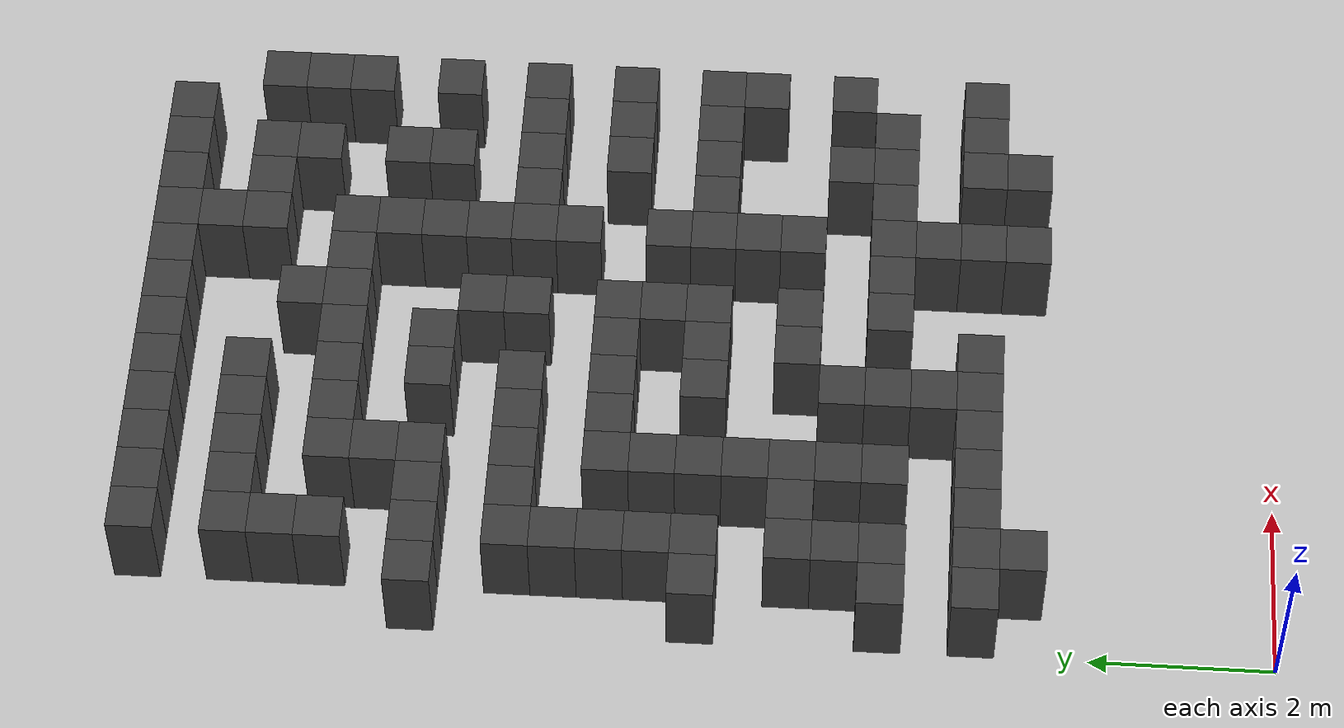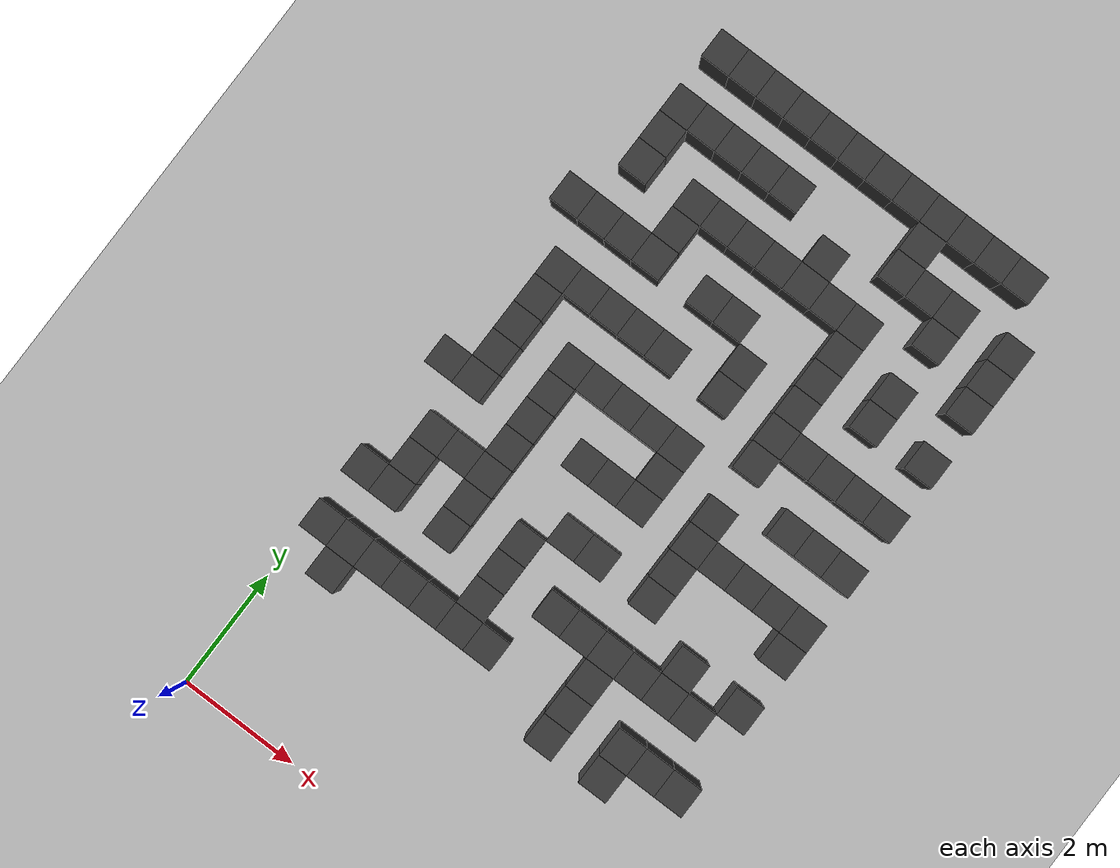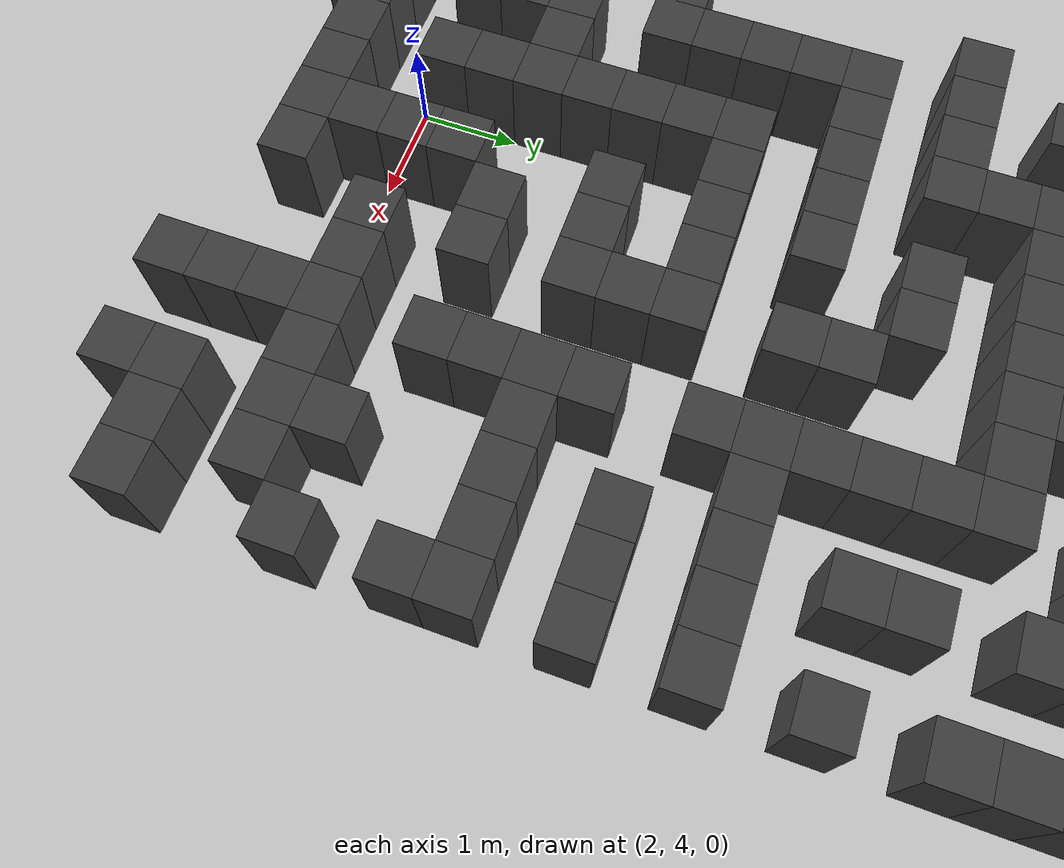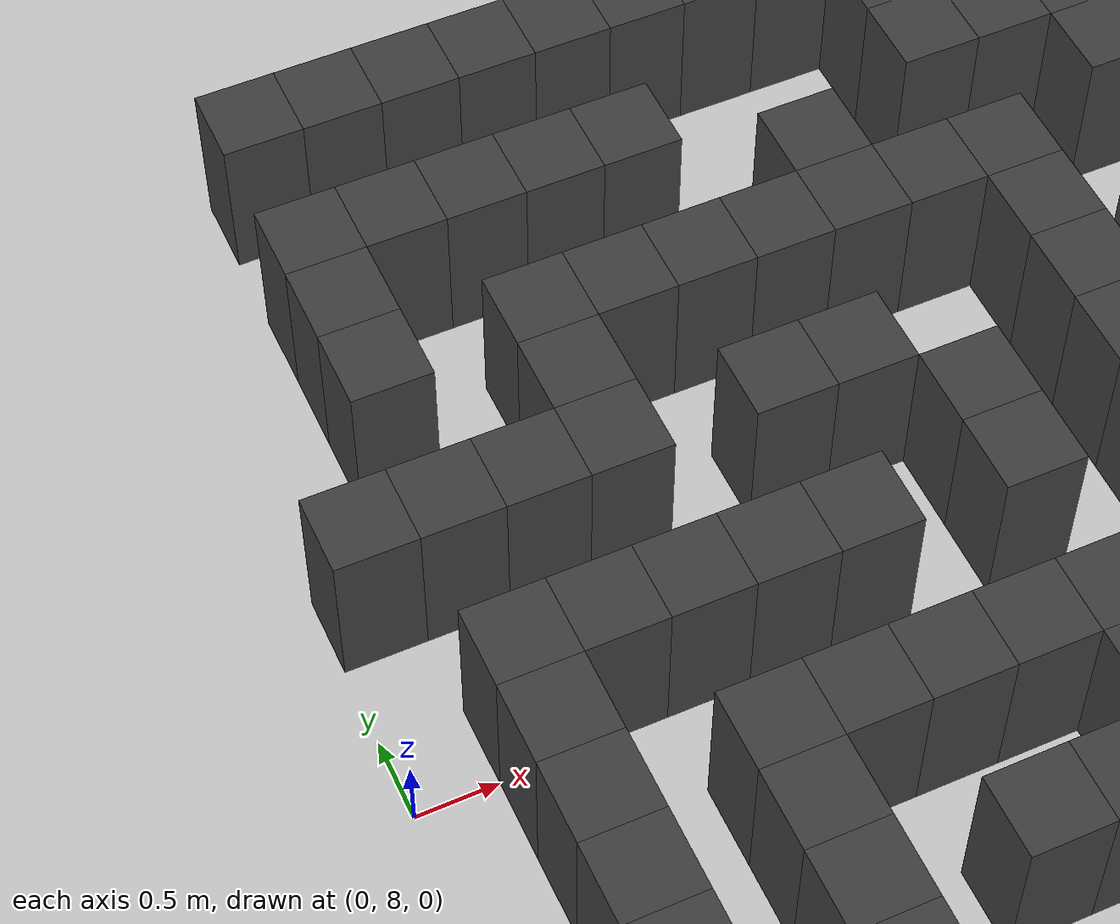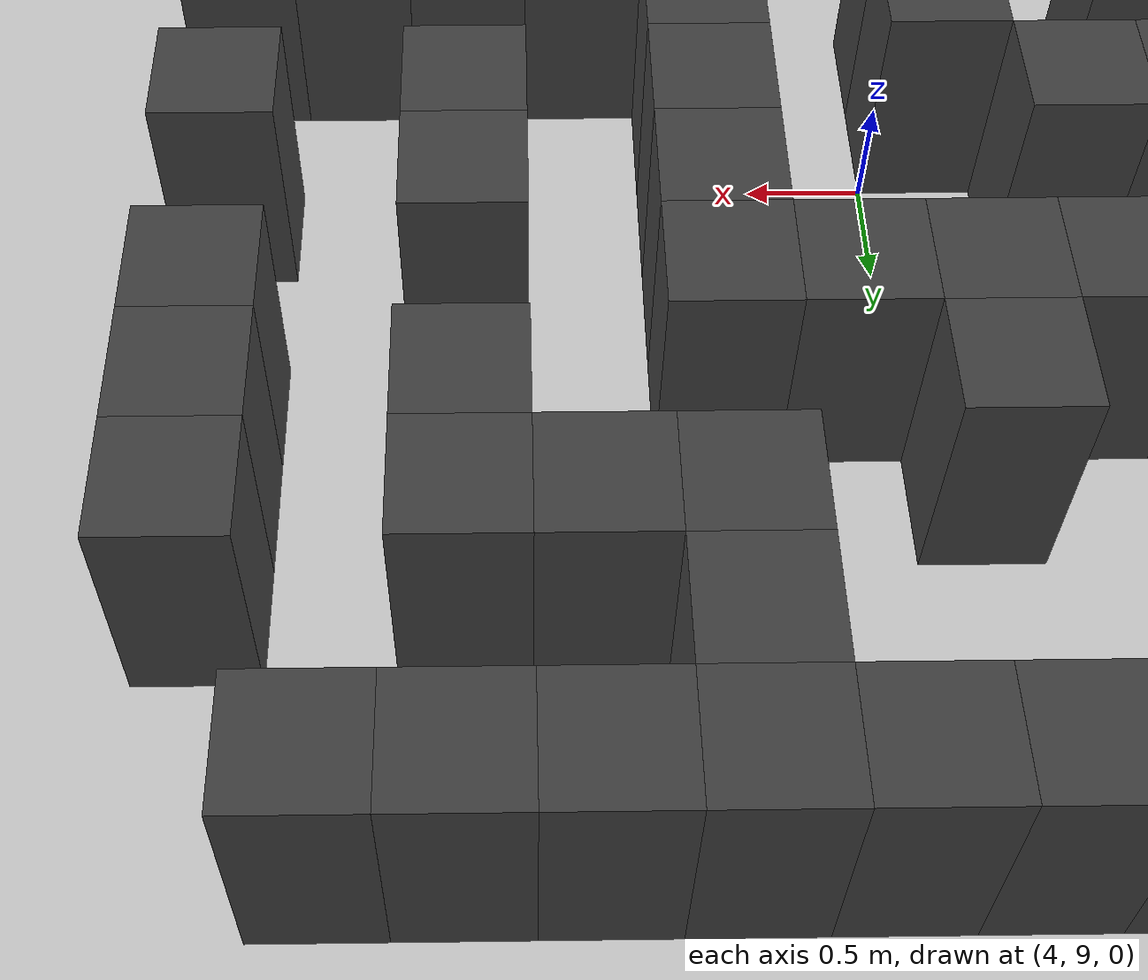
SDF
<sdf version="1.7">
 <world name="map_16734">
  <model name="ground_plane">
   <static>true</static>
   <link name="link">
    <collision name="collision">
     <geometry><plane><normal>0 0 1</normal><size>200 200</size></plane></geometry>
    </collision>
    <visual name="visual">
     <geometry><plane><normal>0 0 1</normal><size>200 200</size></plane></geometry>
     <material><ambient>0.8 0.8 0.8 1</ambient><diffuse>0.8 0.8 0.8 1</diffuse></material>
    </visual>
   </link>
  </model>
  <model name="maze_environment">
   <static>true</static>
   <link name="wall_26">
    <pose>0.750 12.250 0.500 0 0 0</pose>
    <collision name="col"><geometry><box><size>0.5 0.5 1.0</size></box></geometry></collision>
    <visual name="vis">
     <geometry><box><size>0.5 0.5 1.0</size></box></geometry>
     <material><ambient>0.15 0.15 0.15 1</ambient><diffuse>0.25 0.25 0.25 1</diffuse></material>
    </visual>
   </link>
   <link name="wall_27">
    <pose>1.250 12.250 0.500 0 0 0</pose>
    <collision name="col"><geometry><box><size>0.5 0.5 1.0</size></box></geometry></collision>
    <visual name="vis">
     <geometry><box><size>0.5 0.5 1.0</size></box></geometry>
     <material><ambient>0.15 0.15 0.15 1</ambient><diffuse>0.25 0.25 0.25 1</diffuse></material>
    </visual>
   </link>
   <link name="wall_28">
    <pose>1.750 12.250 0.500 0 0 0</pose>
    <collision name="col"><geometry><box><size>0.5 0.5 1.0</size></box></geometry></collision>
    <visual name="vis">
     <geometry><box><size>0.5 0.5 1.0</size></box></geometry>
     <material><ambient>0.15 0.15 0.15 1</ambient><diffuse>0.25 0.25 0.25 1</diffuse></material>
    </visual>
   </link>
   <link name="wall_29">
    <pose>2.250 12.250 0.500 0 0 0</pose>
    <collision name="col"><geometry><box><size>0.5 0.5 1.0</size></box></geometry></collision>
    <visual name="vis">
     <geometry><box><size>0.5 0.5 1.0</size></box></geometry>
     <material><ambient>0.15 0.15 0.15 1</ambient><diffuse>0.25 0.25 0.25 1</diffuse></material>
    </visual>
   </link>
   <link name="wall_30">
    <pose>2.750 12.250 0.500 0 0 0</pose>
    <collision name="col"><geometry><box><size>0.5 0.5 1.0</size></box></geometry></collision>
    <visual name="vis">
     <geometry><box><size>0.5 0.5 1.0</size></box></geometry>
     <material><ambient>0.15 0.15 0.15 1</ambient><diffuse>0.25 0.25 0.25 1</diffuse></material>
    </visual>
   </link>
   <link name="wall_31">
    <pose>3.250 12.250 0.500 0 0 0</pose>
    <collision name="col"><geometry><box><size>0.5 0.5 1.0</size></box></geometry></collision>
    <visual name="vis">
     <geometry><box><size>0.5 0.5 1.0</size></box></geometry>
     <material><ambient>0.15 0.15 0.15 1</ambient><diffuse>0.25 0.25 0.25 1</diffuse></material>
    </visual>
   </link>
   <link name="wall_32">
    <pose>3.750 12.250 0.500 0 0 0</pose>
    <collision name="col"><geometry><box><size>0.5 0.5 1.0</size></box></geometry></collision>
    <visual name="vis">
     <geometry><box><size>0.5 0.5 1.0</size></box></geometry>
     <material><ambient>0.15 0.15 0.15 1</ambient><diffuse>0.25 0.25 0.25 1</diffuse></material>
    </visual>
   </link>
   <link name="wall_33">
    <pose>4.250 12.250 0.500 0 0 0</pose>
    <collision name="col"><geometry><box><size>0.5 0.5 1.0</size></box></geometry></collision>
    <visual name="vis">
     <geometry><box><size>0.5 0.5 1.0</size></box></geometry>
     <material><ambient>0.15 0.15 0.15 1</ambient><diffuse>0.25 0.25 0.25 1</diffuse></material>
    </visual>
   </link>
   <link name="wall_34">
    <pose>4.750 12.250 0.500 0 0 0</pose>
    <collision name="col"><geometry><box><size>0.5 0.5 1.0</size></box></geometry></collision>
    <visual name="vis">
     <geometry><box><size>0.5 0.5 1.0</size></box></geometry>
     <material><ambient>0.15 0.15 0.15 1</ambient><diffuse>0.25 0.25 0.25 1</diffuse></material>
    </visual>
   </link>
   <link name="wall_35">
    <pose>5.250 12.250 0.500 0 0 0</pose>
    <collision name="col"><geometry><box><size>0.5 0.5 1.0</size></box></geometry></collision>
    <visual name="vis">
     <geometry><box><size>0.5 0.5 1.0</size></box></geometry>
     <material><ambient>0.15 0.15 0.15 1</ambient><diffuse>0.25 0.25 0.25 1</diffuse></material>
    </visual>
   </link>
   <link name="wall_36">
    <pose>5.750 12.250 0.500 0 0 0</pose>
    <collision name="col"><geometry><box><size>0.5 0.5 1.0</size></box></geometry></collision>
    <visual name="vis">
     <geometry><box><size>0.5 0.5 1.0</size></box></geometry>
     <material><ambient>0.15 0.15 0.15 1</ambient><diffuse>0.25 0.25 0.25 1</diffuse></material>
    </visual>
   </link>
   <link name="wall_37">
    <pose>6.250 12.250 0.500 0 0 0</pose>
    <collision name="col"><geometry><box><size>0.5 0.5 1.0</size></box></geometry></collision>
    <visual name="vis">
     <geometry><box><size>0.5 0.5 1.0</size></box></geometry>
     <material><ambient>0.15 0.15 0.15 1</ambient><diffuse>0.25 0.25 0.25 1</diffuse></material>
    </visual>
   </link>
   <link name="wall_54">
    <pose>4.750 11.750 0.500 0 0 0</pose>
    <collision name="col"><geometry><box><size>0.5 0.5 1.0</size></box></geometry></collision>
    <visual name="vis">
     <geometry><box><size>0.5 0.5 1.0</size></box></geometry>
     <material><ambient>0.15 0.15 0.15 1</ambient><diffuse>0.25 0.25 0.25 1</diffuse></material>
    </visual>
   </link>
   <link name="wall_78">
    <pose>0.750 11.250 0.500 0 0 0</pose>
    <collision name="col"><geometry><box><size>0.5 0.5 1.0</size></box></geometry></collision>
    <visual name="vis">
     <geometry><box><size>0.5 0.5 1.0</size></box></geometry>
     <material><ambient>0.15 0.15 0.15 1</ambient><diffuse>0.25 0.25 0.25 1</diffuse></material>
    </visual>
   </link>
   <link name="wall_79">
    <pose>1.250 11.250 0.500 0 0 0</pose>
    <collision name="col"><geometry><box><size>0.5 0.5 1.0</size></box></geometry></collision>
    <visual name="vis">
     <geometry><box><size>0.5 0.5 1.0</size></box></geometry>
     <material><ambient>0.15 0.15 0.15 1</ambient><diffuse>0.25 0.25 0.25 1</diffuse></material>
    </visual>
   </link>
   <link name="wall_80">
    <pose>1.750 11.250 0.500 0 0 0</pose>
    <collision name="col"><geometry><box><size>0.5 0.5 1.0</size></box></geometry></collision>
    <visual name="vis">
     <geometry><box><size>0.5 0.5 1.0</size></box></geometry>
     <material><ambient>0.15 0.15 0.15 1</ambient><diffuse>0.25 0.25 0.25 1</diffuse></material>
    </visual>
   </link>
   <link name="wall_81">
    <pose>2.250 11.250 0.500 0 0 0</pose>
    <collision name="col"><geometry><box><size>0.5 0.5 1.0</size></box></geometry></collision>
    <visual name="vis">
     <geometry><box><size>0.5 0.5 1.0</size></box></geometry>
     <material><ambient>0.15 0.15 0.15 1</ambient><diffuse>0.25 0.25 0.25 1</diffuse></material>
    </visual>
   </link>
   <link name="wall_82">
    <pose>2.750 11.250 0.500 0 0 0</pose>
    <collision name="col"><geometry><box><size>0.5 0.5 1.0</size></box></geometry></collision>
    <visual name="vis">
     <geometry><box><size>0.5 0.5 1.0</size></box></geometry>
     <material><ambient>0.15 0.15 0.15 1</ambient><diffuse>0.25 0.25 0.25 1</diffuse></material>
    </visual>
   </link>
   <link name="wall_83">
    <pose>4.750 11.250 0.500 0 0 0</pose>
    <collision name="col"><geometry><box><size>0.5 0.5 1.0</size></box></geometry></collision>
    <visual name="vis">
     <geometry><box><size>0.5 0.5 1.0</size></box></geometry>
     <material><ambient>0.15 0.15 0.15 1</ambient><diffuse>0.25 0.25 0.25 1</diffuse></material>
    </visual>
   </link>
   <link name="wall_84">
    <pose>5.250 11.250 0.500 0 0 0</pose>
    <collision name="col"><geometry><box><size>0.5 0.5 1.0</size></box></geometry></collision>
    <visual name="vis">
     <geometry><box><size>0.5 0.5 1.0</size></box></geometry>
     <material><ambient>0.15 0.15 0.15 1</ambient><diffuse>0.25 0.25 0.25 1</diffuse></material>
    </visual>
   </link>
   <link name="wall_85">
    <pose>5.750 11.250 0.500 0 0 0</pose>
    <collision name="col"><geometry><box><size>0.5 0.5 1.0</size></box></geometry></collision>
    <visual name="vis">
     <geometry><box><size>0.5 0.5 1.0</size></box></geometry>
     <material><ambient>0.15 0.15 0.15 1</ambient><diffuse>0.25 0.25 0.25 1</diffuse></material>
    </visual>
   </link>
   <link name="wall_86">
    <pose>6.750 11.250 0.500 0 0 0</pose>
    <collision name="col"><geometry><box><size>0.5 0.5 1.0</size></box></geometry></collision>
    <visual name="vis">
     <geometry><box><size>0.5 0.5 1.0</size></box></geometry>
     <material><ambient>0.15 0.15 0.15 1</ambient><diffuse>0.25 0.25 0.25 1</diffuse></material>
    </visual>
   </link>
   <link name="wall_102">
    <pose>0.750 10.750 0.500 0 0 0</pose>
    <collision name="col"><geometry><box><size>0.5 0.5 1.0</size></box></geometry></collision>
    <visual name="vis">
     <geometry><box><size>0.5 0.5 1.0</size></box></geometry>
     <material><ambient>0.15 0.15 0.15 1</ambient><diffuse>0.25 0.25 0.25 1</diffuse></material>
    </visual>
   </link>
   <link name="wall_103">
    <pose>3.750 10.750 0.500 0 0 0</pose>
    <collision name="col"><geometry><box><size>0.5 0.5 1.0</size></box></geometry></collision>
    <visual name="vis">
     <geometry><box><size>0.5 0.5 1.0</size></box></geometry>
     <material><ambient>0.15 0.15 0.15 1</ambient><diffuse>0.25 0.25 0.25 1</diffuse></material>
    </visual>
   </link>
   <link name="wall_104">
    <pose>5.750 10.750 0.500 0 0 0</pose>
    <collision name="col"><geometry><box><size>0.5 0.5 1.0</size></box></geometry></collision>
    <visual name="vis">
     <geometry><box><size>0.5 0.5 1.0</size></box></geometry>
     <material><ambient>0.15 0.15 0.15 1</ambient><diffuse>0.25 0.25 0.25 1</diffuse></material>
    </visual>
   </link>
   <link name="wall_105">
    <pose>6.750 10.750 0.500 0 0 0</pose>
    <collision name="col"><geometry><box><size>0.5 0.5 1.0</size></box></geometry></collision>
    <visual name="vis">
     <geometry><box><size>0.5 0.5 1.0</size></box></geometry>
     <material><ambient>0.15 0.15 0.15 1</ambient><diffuse>0.25 0.25 0.25 1</diffuse></material>
    </visual>
   </link>
   <link name="wall_128">
    <pose>0.750 10.250 0.500 0 0 0</pose>
    <collision name="col"><geometry><box><size>0.5 0.5 1.0</size></box></geometry></collision>
    <visual name="vis">
     <geometry><box><size>0.5 0.5 1.0</size></box></geometry>
     <material><ambient>0.15 0.15 0.15 1</ambient><diffuse>0.25 0.25 0.25 1</diffuse></material>
    </visual>
   </link>
   <link name="wall_129">
    <pose>1.750 10.250 0.500 0 0 0</pose>
    <collision name="col"><geometry><box><size>0.5 0.5 1.0</size></box></geometry></collision>
    <visual name="vis">
     <geometry><box><size>0.5 0.5 1.0</size></box></geometry>
     <material><ambient>0.15 0.15 0.15 1</ambient><diffuse>0.25 0.25 0.25 1</diffuse></material>
    </visual>
   </link>
   <link name="wall_130">
    <pose>2.250 10.250 0.500 0 0 0</pose>
    <collision name="col"><geometry><box><size>0.5 0.5 1.0</size></box></geometry></collision>
    <visual name="vis">
     <geometry><box><size>0.5 0.5 1.0</size></box></geometry>
     <material><ambient>0.15 0.15 0.15 1</ambient><diffuse>0.25 0.25 0.25 1</diffuse></material>
    </visual>
   </link>
   <link name="wall_131">
    <pose>2.750 10.250 0.500 0 0 0</pose>
    <collision name="col"><geometry><box><size>0.5 0.5 1.0</size></box></geometry></collision>
    <visual name="vis">
     <geometry><box><size>0.5 0.5 1.0</size></box></geometry>
     <material><ambient>0.15 0.15 0.15 1</ambient><diffuse>0.25 0.25 0.25 1</diffuse></material>
    </visual>
   </link>
   <link name="wall_132">
    <pose>3.250 10.250 0.500 0 0 0</pose>
    <collision name="col"><geometry><box><size>0.5 0.5 1.0</size></box></geometry></collision>
    <visual name="vis">
     <geometry><box><size>0.5 0.5 1.0</size></box></geometry>
     <material><ambient>0.15 0.15 0.15 1</ambient><diffuse>0.25 0.25 0.25 1</diffuse></material>
    </visual>
   </link>
   <link name="wall_133">
    <pose>3.750 10.250 0.500 0 0 0</pose>
    <collision name="col"><geometry><box><size>0.5 0.5 1.0</size></box></geometry></collision>
    <visual name="vis">
     <geometry><box><size>0.5 0.5 1.0</size></box></geometry>
     <material><ambient>0.15 0.15 0.15 1</ambient><diffuse>0.25 0.25 0.25 1</diffuse></material>
    </visual>
   </link>
   <link name="wall_134">
    <pose>4.250 10.250 0.500 0 0 0</pose>
    <collision name="col"><geometry><box><size>0.5 0.5 1.0</size></box></geometry></collision>
    <visual name="vis">
     <geometry><box><size>0.5 0.5 1.0</size></box></geometry>
     <material><ambient>0.15 0.15 0.15 1</ambient><diffuse>0.25 0.25 0.25 1</diffuse></material>
    </visual>
   </link>
   <link name="wall_135">
    <pose>4.750 10.250 0.500 0 0 0</pose>
    <collision name="col"><geometry><box><size>0.5 0.5 1.0</size></box></geometry></collision>
    <visual name="vis">
     <geometry><box><size>0.5 0.5 1.0</size></box></geometry>
     <material><ambient>0.15 0.15 0.15 1</ambient><diffuse>0.25 0.25 0.25 1</diffuse></material>
    </visual>
   </link>
   <link name="wall_136">
    <pose>6.750 10.250 0.500 0 0 0</pose>
    <collision name="col"><geometry><box><size>0.5 0.5 1.0</size></box></geometry></collision>
    <visual name="vis">
     <geometry><box><size>0.5 0.5 1.0</size></box></geometry>
     <material><ambient>0.15 0.15 0.15 1</ambient><diffuse>0.25 0.25 0.25 1</diffuse></material>
    </visual>
   </link>
   <link name="wall_151">
    <pose>1.750 9.750 0.500 0 0 0</pose>
    <collision name="col"><geometry><box><size>0.5 0.5 1.0</size></box></geometry></collision>
    <visual name="vis">
     <geometry><box><size>0.5 0.5 1.0</size></box></geometry>
     <material><ambient>0.15 0.15 0.15 1</ambient><diffuse>0.25 0.25 0.25 1</diffuse></material>
    </visual>
   </link>
   <link name="wall_152">
    <pose>4.750 9.750 0.500 0 0 0</pose>
    <collision name="col"><geometry><box><size>0.5 0.5 1.0</size></box></geometry></collision>
    <visual name="vis">
     <geometry><box><size>0.5 0.5 1.0</size></box></geometry>
     <material><ambient>0.15 0.15 0.15 1</ambient><diffuse>0.25 0.25 0.25 1</diffuse></material>
    </visual>
   </link>
   <link name="wall_153">
    <pose>5.750 9.750 0.500 0 0 0</pose>
    <collision name="col"><geometry><box><size>0.5 0.5 1.0</size></box></geometry></collision>
    <visual name="vis">
     <geometry><box><size>0.5 0.5 1.0</size></box></geometry>
     <material><ambient>0.15 0.15 0.15 1</ambient><diffuse>0.25 0.25 0.25 1</diffuse></material>
    </visual>
   </link>
   <link name="wall_174">
    <pose>0.250 9.250 0.500 0 0 0</pose>
    <collision name="col"><geometry><box><size>0.5 0.5 1.0</size></box></geometry></collision>
    <visual name="vis">
     <geometry><box><size>0.5 0.5 1.0</size></box></geometry>
     <material><ambient>0.15 0.15 0.15 1</ambient><diffuse>0.25 0.25 0.25 1</diffuse></material>
    </visual>
   </link>
   <link name="wall_175">
    <pose>0.750 9.250 0.500 0 0 0</pose>
    <collision name="col"><geometry><box><size>0.5 0.5 1.0</size></box></geometry></collision>
    <visual name="vis">
     <geometry><box><size>0.5 0.5 1.0</size></box></geometry>
     <material><ambient>0.15 0.15 0.15 1</ambient><diffuse>0.25 0.25 0.25 1</diffuse></material>
    </visual>
   </link>
   <link name="wall_176">
    <pose>1.250 9.250 0.500 0 0 0</pose>
    <collision name="col"><geometry><box><size>0.5 0.5 1.0</size></box></geometry></collision>
    <visual name="vis">
     <geometry><box><size>0.5 0.5 1.0</size></box></geometry>
     <material><ambient>0.15 0.15 0.15 1</ambient><diffuse>0.25 0.25 0.25 1</diffuse></material>
    </visual>
   </link>
   <link name="wall_177">
    <pose>1.750 9.250 0.500 0 0 0</pose>
    <collision name="col"><geometry><box><size>0.5 0.5 1.0</size></box></geometry></collision>
    <visual name="vis">
     <geometry><box><size>0.5 0.5 1.0</size></box></geometry>
     <material><ambient>0.15 0.15 0.15 1</ambient><diffuse>0.25 0.25 0.25 1</diffuse></material>
    </visual>
   </link>
   <link name="wall_178">
    <pose>2.750 9.250 0.500 0 0 0</pose>
    <collision name="col"><geometry><box><size>0.5 0.5 1.0</size></box></geometry></collision>
    <visual name="vis">
     <geometry><box><size>0.5 0.5 1.0</size></box></geometry>
     <material><ambient>0.15 0.15 0.15 1</ambient><diffuse>0.25 0.25 0.25 1</diffuse></material>
    </visual>
   </link>
   <link name="wall_179">
    <pose>3.250 9.250 0.500 0 0 0</pose>
    <collision name="col"><geometry><box><size>0.5 0.5 1.0</size></box></geometry></collision>
    <visual name="vis">
     <geometry><box><size>0.5 0.5 1.0</size></box></geometry>
     <material><ambient>0.15 0.15 0.15 1</ambient><diffuse>0.25 0.25 0.25 1</diffuse></material>
    </visual>
   </link>
   <link name="wall_180">
    <pose>4.750 9.250 0.500 0 0 0</pose>
    <collision name="col"><geometry><box><size>0.5 0.5 1.0</size></box></geometry></collision>
    <visual name="vis">
     <geometry><box><size>0.5 0.5 1.0</size></box></geometry>
     <material><ambient>0.15 0.15 0.15 1</ambient><diffuse>0.25 0.25 0.25 1</diffuse></material>
    </visual>
   </link>
   <link name="wall_181">
    <pose>5.750 9.250 0.500 0 0 0</pose>
    <collision name="col"><geometry><box><size>0.5 0.5 1.0</size></box></geometry></collision>
    <visual name="vis">
     <geometry><box><size>0.5 0.5 1.0</size></box></geometry>
     <material><ambient>0.15 0.15 0.15 1</ambient><diffuse>0.25 0.25 0.25 1</diffuse></material>
    </visual>
   </link>
   <link name="wall_182">
    <pose>6.750 9.250 0.500 0 0 0</pose>
    <collision name="col"><geometry><box><size>0.5 0.5 1.0</size></box></geometry></collision>
    <visual name="vis">
     <geometry><box><size>0.5 0.5 1.0</size></box></geometry>
     <material><ambient>0.15 0.15 0.15 1</ambient><diffuse>0.25 0.25 0.25 1</diffuse></material>
    </visual>
   </link>
   <link name="wall_194">
    <pose>3.750 8.750 0.500 0 0 0</pose>
    <collision name="col"><geometry><box><size>0.5 0.5 1.0</size></box></geometry></collision>
    <visual name="vis">
     <geometry><box><size>0.5 0.5 1.0</size></box></geometry>
     <material><ambient>0.15 0.15 0.15 1</ambient><diffuse>0.25 0.25 0.25 1</diffuse></material>
    </visual>
   </link>
   <link name="wall_195">
    <pose>4.750 8.750 0.500 0 0 0</pose>
    <collision name="col"><geometry><box><size>0.5 0.5 1.0</size></box></geometry></collision>
    <visual name="vis">
     <geometry><box><size>0.5 0.5 1.0</size></box></geometry>
     <material><ambient>0.15 0.15 0.15 1</ambient><diffuse>0.25 0.25 0.25 1</diffuse></material>
    </visual>
   </link>
   <link name="wall_217">
    <pose>0.750 8.250 0.500 0 0 0</pose>
    <collision name="col"><geometry><box><size>0.5 0.5 1.0</size></box></geometry></collision>
    <visual name="vis">
     <geometry><box><size>0.5 0.5 1.0</size></box></geometry>
     <material><ambient>0.15 0.15 0.15 1</ambient><diffuse>0.25 0.25 0.25 1</diffuse></material>
    </visual>
   </link>
   <link name="wall_218">
    <pose>1.250 8.250 0.500 0 0 0</pose>
    <collision name="col"><geometry><box><size>0.5 0.5 1.0</size></box></geometry></collision>
    <visual name="vis">
     <geometry><box><size>0.5 0.5 1.0</size></box></geometry>
     <material><ambient>0.15 0.15 0.15 1</ambient><diffuse>0.25 0.25 0.25 1</diffuse></material>
    </visual>
   </link>
   <link name="wall_219">
    <pose>1.750 8.250 0.500 0 0 0</pose>
    <collision name="col"><geometry><box><size>0.5 0.5 1.0</size></box></geometry></collision>
    <visual name="vis">
     <geometry><box><size>0.5 0.5 1.0</size></box></geometry>
     <material><ambient>0.15 0.15 0.15 1</ambient><diffuse>0.25 0.25 0.25 1</diffuse></material>
    </visual>
   </link>
   <link name="wall_220">
    <pose>2.250 8.250 0.500 0 0 0</pose>
    <collision name="col"><geometry><box><size>0.5 0.5 1.0</size></box></geometry></collision>
    <visual name="vis">
     <geometry><box><size>0.5 0.5 1.0</size></box></geometry>
     <material><ambient>0.15 0.15 0.15 1</ambient><diffuse>0.25 0.25 0.25 1</diffuse></material>
    </visual>
   </link>
   <link name="wall_221">
    <pose>2.750 8.250 0.500 0 0 0</pose>
    <collision name="col"><geometry><box><size>0.5 0.5 1.0</size></box></geometry></collision>
    <visual name="vis">
     <geometry><box><size>0.5 0.5 1.0</size></box></geometry>
     <material><ambient>0.15 0.15 0.15 1</ambient><diffuse>0.25 0.25 0.25 1</diffuse></material>
    </visual>
   </link>
   <link name="wall_222">
    <pose>3.750 8.250 0.500 0 0 0</pose>
    <collision name="col"><geometry><box><size>0.5 0.5 1.0</size></box></geometry></collision>
    <visual name="vis">
     <geometry><box><size>0.5 0.5 1.0</size></box></geometry>
     <material><ambient>0.15 0.15 0.15 1</ambient><diffuse>0.25 0.25 0.25 1</diffuse></material>
    </visual>
   </link>
   <link name="wall_223">
    <pose>4.750 8.250 0.500 0 0 0</pose>
    <collision name="col"><geometry><box><size>0.5 0.5 1.0</size></box></geometry></collision>
    <visual name="vis">
     <geometry><box><size>0.5 0.5 1.0</size></box></geometry>
     <material><ambient>0.15 0.15 0.15 1</ambient><diffuse>0.25 0.25 0.25 1</diffuse></material>
    </visual>
   </link>
   <link name="wall_224">
    <pose>5.250 8.250 0.500 0 0 0</pose>
    <collision name="col"><geometry><box><size>0.5 0.5 1.0</size></box></geometry></collision>
    <visual name="vis">
     <geometry><box><size>0.5 0.5 1.0</size></box></geometry>
     <material><ambient>0.15 0.15 0.15 1</ambient><diffuse>0.25 0.25 0.25 1</diffuse></material>
    </visual>
   </link>
   <link name="wall_225">
    <pose>5.750 8.250 0.500 0 0 0</pose>
    <collision name="col"><geometry><box><size>0.5 0.5 1.0</size></box></geometry></collision>
    <visual name="vis">
     <geometry><box><size>0.5 0.5 1.0</size></box></geometry>
     <material><ambient>0.15 0.15 0.15 1</ambient><diffuse>0.25 0.25 0.25 1</diffuse></material>
    </visual>
   </link>
   <link name="wall_226">
    <pose>6.250 8.250 0.500 0 0 0</pose>
    <collision name="col"><geometry><box><size>0.5 0.5 1.0</size></box></geometry></collision>
    <visual name="vis">
     <geometry><box><size>0.5 0.5 1.0</size></box></geometry>
     <material><ambient>0.15 0.15 0.15 1</ambient><diffuse>0.25 0.25 0.25 1</diffuse></material>
    </visual>
   </link>
   <link name="wall_227">
    <pose>6.750 8.250 0.500 0 0 0</pose>
    <collision name="col"><geometry><box><size>0.5 0.5 1.0</size></box></geometry></collision>
    <visual name="vis">
     <geometry><box><size>0.5 0.5 1.0</size></box></geometry>
     <material><ambient>0.15 0.15 0.15 1</ambient><diffuse>0.25 0.25 0.25 1</diffuse></material>
    </visual>
   </link>
   <link name="wall_241">
    <pose>0.750 7.750 0.500 0 0 0</pose>
    <collision name="col"><geometry><box><size>0.5 0.5 1.0</size></box></geometry></collision>
    <visual name="vis">
     <geometry><box><size>0.5 0.5 1.0</size></box></geometry>
     <material><ambient>0.15 0.15 0.15 1</ambient><diffuse>0.25 0.25 0.25 1</diffuse></material>
    </visual>
   </link>
   <link name="wall_242">
    <pose>4.750 7.750 0.500 0 0 0</pose>
    <collision name="col"><geometry><box><size>0.5 0.5 1.0</size></box></geometry></collision>
    <visual name="vis">
     <geometry><box><size>0.5 0.5 1.0</size></box></geometry>
     <material><ambient>0.15 0.15 0.15 1</ambient><diffuse>0.25 0.25 0.25 1</diffuse></material>
    </visual>
   </link>
   <link name="wall_264">
    <pose>0.750 7.250 0.500 0 0 0</pose>
    <collision name="col"><geometry><box><size>0.5 0.5 1.0</size></box></geometry></collision>
    <visual name="vis">
     <geometry><box><size>0.5 0.5 1.0</size></box></geometry>
     <material><ambient>0.15 0.15 0.15 1</ambient><diffuse>0.25 0.25 0.25 1</diffuse></material>
    </visual>
   </link>
   <link name="wall_265">
    <pose>1.750 7.250 0.500 0 0 0</pose>
    <collision name="col"><geometry><box><size>0.5 0.5 1.0</size></box></geometry></collision>
    <visual name="vis">
     <geometry><box><size>0.5 0.5 1.0</size></box></geometry>
     <material><ambient>0.15 0.15 0.15 1</ambient><diffuse>0.25 0.25 0.25 1</diffuse></material>
    </visual>
   </link>
   <link name="wall_266">
    <pose>2.250 7.250 0.500 0 0 0</pose>
    <collision name="col"><geometry><box><size>0.5 0.5 1.0</size></box></geometry></collision>
    <visual name="vis">
     <geometry><box><size>0.5 0.5 1.0</size></box></geometry>
     <material><ambient>0.15 0.15 0.15 1</ambient><diffuse>0.25 0.25 0.25 1</diffuse></material>
    </visual>
   </link>
   <link name="wall_267">
    <pose>2.750 7.250 0.500 0 0 0</pose>
    <collision name="col"><geometry><box><size>0.5 0.5 1.0</size></box></geometry></collision>
    <visual name="vis">
     <geometry><box><size>0.5 0.5 1.0</size></box></geometry>
     <material><ambient>0.15 0.15 0.15 1</ambient><diffuse>0.25 0.25 0.25 1</diffuse></material>
    </visual>
   </link>
   <link name="wall_268">
    <pose>3.250 7.250 0.500 0 0 0</pose>
    <collision name="col"><geometry><box><size>0.5 0.5 1.0</size></box></geometry></collision>
    <visual name="vis">
     <geometry><box><size>0.5 0.5 1.0</size></box></geometry>
     <material><ambient>0.15 0.15 0.15 1</ambient><diffuse>0.25 0.25 0.25 1</diffuse></material>
    </visual>
   </link>
   <link name="wall_269">
    <pose>3.750 7.250 0.500 0 0 0</pose>
    <collision name="col"><geometry><box><size>0.5 0.5 1.0</size></box></geometry></collision>
    <visual name="vis">
     <geometry><box><size>0.5 0.5 1.0</size></box></geometry>
     <material><ambient>0.15 0.15 0.15 1</ambient><diffuse>0.25 0.25 0.25 1</diffuse></material>
    </visual>
   </link>
   <link name="wall_270">
    <pose>5.750 7.250 0.500 0 0 0</pose>
    <collision name="col"><geometry><box><size>0.5 0.5 1.0</size></box></geometry></collision>
    <visual name="vis">
     <geometry><box><size>0.5 0.5 1.0</size></box></geometry>
     <material><ambient>0.15 0.15 0.15 1</ambient><diffuse>0.25 0.25 0.25 1</diffuse></material>
    </visual>
   </link>
   <link name="wall_271">
    <pose>6.250 7.250 0.500 0 0 0</pose>
    <collision name="col"><geometry><box><size>0.5 0.5 1.0</size></box></geometry></collision>
    <visual name="vis">
     <geometry><box><size>0.5 0.5 1.0</size></box></geometry>
     <material><ambient>0.15 0.15 0.15 1</ambient><diffuse>0.25 0.25 0.25 1</diffuse></material>
    </visual>
   </link>
   <link name="wall_272">
    <pose>6.750 7.250 0.500 0 0 0</pose>
    <collision name="col"><geometry><box><size>0.5 0.5 1.0</size></box></geometry></collision>
    <visual name="vis">
     <geometry><box><size>0.5 0.5 1.0</size></box></geometry>
     <material><ambient>0.15 0.15 0.15 1</ambient><diffuse>0.25 0.25 0.25 1</diffuse></material>
    </visual>
   </link>
   <link name="wall_289">
    <pose>0.750 6.750 0.500 0 0 0</pose>
    <collision name="col"><geometry><box><size>0.5 0.5 1.0</size></box></geometry></collision>
    <visual name="vis">
     <geometry><box><size>0.5 0.5 1.0</size></box></geometry>
     <material><ambient>0.15 0.15 0.15 1</ambient><diffuse>0.25 0.25 0.25 1</diffuse></material>
    </visual>
   </link>
   <link name="wall_290">
    <pose>1.750 6.750 0.500 0 0 0</pose>
    <collision name="col"><geometry><box><size>0.5 0.5 1.0</size></box></geometry></collision>
    <visual name="vis">
     <geometry><box><size>0.5 0.5 1.0</size></box></geometry>
     <material><ambient>0.15 0.15 0.15 1</ambient><diffuse>0.25 0.25 0.25 1</diffuse></material>
    </visual>
   </link>
   <link name="wall_291">
    <pose>3.750 6.750 0.500 0 0 0</pose>
    <collision name="col"><geometry><box><size>0.5 0.5 1.0</size></box></geometry></collision>
    <visual name="vis">
     <geometry><box><size>0.5 0.5 1.0</size></box></geometry>
     <material><ambient>0.15 0.15 0.15 1</ambient><diffuse>0.25 0.25 0.25 1</diffuse></material>
    </visual>
   </link>
   <link name="wall_292">
    <pose>4.750 6.750 0.500 0 0 0</pose>
    <collision name="col"><geometry><box><size>0.5 0.5 1.0</size></box></geometry></collision>
    <visual name="vis">
     <geometry><box><size>0.5 0.5 1.0</size></box></geometry>
     <material><ambient>0.15 0.15 0.15 1</ambient><diffuse>0.25 0.25 0.25 1</diffuse></material>
    </visual>
   </link>
   <link name="wall_316">
    <pose>0.250 6.250 0.500 0 0 0</pose>
    <collision name="col"><geometry><box><size>0.5 0.5 1.0</size></box></geometry></collision>
    <visual name="vis">
     <geometry><box><size>0.5 0.5 1.0</size></box></geometry>
     <material><ambient>0.15 0.15 0.15 1</ambient><diffuse>0.25 0.25 0.25 1</diffuse></material>
    </visual>
   </link>
   <link name="wall_317">
    <pose>0.750 6.250 0.500 0 0 0</pose>
    <collision name="col"><geometry><box><size>0.5 0.5 1.0</size></box></geometry></collision>
    <visual name="vis">
     <geometry><box><size>0.5 0.5 1.0</size></box></geometry>
     <material><ambient>0.15 0.15 0.15 1</ambient><diffuse>0.25 0.25 0.25 1</diffuse></material>
    </visual>
   </link>
   <link name="wall_318">
    <pose>1.750 6.250 0.500 0 0 0</pose>
    <collision name="col"><geometry><box><size>0.5 0.5 1.0</size></box></geometry></collision>
    <visual name="vis">
     <geometry><box><size>0.5 0.5 1.0</size></box></geometry>
     <material><ambient>0.15 0.15 0.15 1</ambient><diffuse>0.25 0.25 0.25 1</diffuse></material>
    </visual>
   </link>
   <link name="wall_319">
    <pose>2.750 6.250 0.500 0 0 0</pose>
    <collision name="col"><geometry><box><size>0.5 0.5 1.0</size></box></geometry></collision>
    <visual name="vis">
     <geometry><box><size>0.5 0.5 1.0</size></box></geometry>
     <material><ambient>0.15 0.15 0.15 1</ambient><diffuse>0.25 0.25 0.25 1</diffuse></material>
    </visual>
   </link>
   <link name="wall_320">
    <pose>3.250 6.250 0.500 0 0 0</pose>
    <collision name="col"><geometry><box><size>0.5 0.5 1.0</size></box></geometry></collision>
    <visual name="vis">
     <geometry><box><size>0.5 0.5 1.0</size></box></geometry>
     <material><ambient>0.15 0.15 0.15 1</ambient><diffuse>0.25 0.25 0.25 1</diffuse></material>
    </visual>
   </link>
   <link name="wall_321">
    <pose>3.750 6.250 0.500 0 0 0</pose>
    <collision name="col"><geometry><box><size>0.5 0.5 1.0</size></box></geometry></collision>
    <visual name="vis">
     <geometry><box><size>0.5 0.5 1.0</size></box></geometry>
     <material><ambient>0.15 0.15 0.15 1</ambient><diffuse>0.25 0.25 0.25 1</diffuse></material>
    </visual>
   </link>
   <link name="wall_322">
    <pose>4.750 6.250 0.500 0 0 0</pose>
    <collision name="col"><geometry><box><size>0.5 0.5 1.0</size></box></geometry></collision>
    <visual name="vis">
     <geometry><box><size>0.5 0.5 1.0</size></box></geometry>
     <material><ambient>0.15 0.15 0.15 1</ambient><diffuse>0.25 0.25 0.25 1</diffuse></material>
    </visual>
   </link>
   <link name="wall_323">
    <pose>5.250 6.250 0.500 0 0 0</pose>
    <collision name="col"><geometry><box><size>0.5 0.5 1.0</size></box></geometry></collision>
    <visual name="vis">
     <geometry><box><size>0.5 0.5 1.0</size></box></geometry>
     <material><ambient>0.15 0.15 0.15 1</ambient><diffuse>0.25 0.25 0.25 1</diffuse></material>
    </visual>
   </link>
   <link name="wall_324">
    <pose>5.750 6.250 0.500 0 0 0</pose>
    <collision name="col"><geometry><box><size>0.5 0.5 1.0</size></box></geometry></collision>
    <visual name="vis">
     <geometry><box><size>0.5 0.5 1.0</size></box></geometry>
     <material><ambient>0.15 0.15 0.15 1</ambient><diffuse>0.25 0.25 0.25 1</diffuse></material>
    </visual>
   </link>
   <link name="wall_325">
    <pose>6.250 6.250 0.500 0 0 0</pose>
    <collision name="col"><geometry><box><size>0.5 0.5 1.0</size></box></geometry></collision>
    <visual name="vis">
     <geometry><box><size>0.5 0.5 1.0</size></box></geometry>
     <material><ambient>0.15 0.15 0.15 1</ambient><diffuse>0.25 0.25 0.25 1</diffuse></material>
    </visual>
   </link>
   <link name="wall_326">
    <pose>6.750 6.250 0.500 0 0 0</pose>
    <collision name="col"><geometry><box><size>0.5 0.5 1.0</size></box></geometry></collision>
    <visual name="vis">
     <geometry><box><size>0.5 0.5 1.0</size></box></geometry>
     <material><ambient>0.15 0.15 0.15 1</ambient><diffuse>0.25 0.25 0.25 1</diffuse></material>
    </visual>
   </link>
   <link name="wall_340">
    <pose>1.750 5.750 0.500 0 0 0</pose>
    <collision name="col"><geometry><box><size>0.5 0.5 1.0</size></box></geometry></collision>
    <visual name="vis">
     <geometry><box><size>0.5 0.5 1.0</size></box></geometry>
     <material><ambient>0.15 0.15 0.15 1</ambient><diffuse>0.25 0.25 0.25 1</diffuse></material>
    </visual>
   </link>
   <link name="wall_341">
    <pose>4.750 5.750 0.500 0 0 0</pose>
    <collision name="col"><geometry><box><size>0.5 0.5 1.0</size></box></geometry></collision>
    <visual name="vis">
     <geometry><box><size>0.5 0.5 1.0</size></box></geometry>
     <material><ambient>0.15 0.15 0.15 1</ambient><diffuse>0.25 0.25 0.25 1</diffuse></material>
    </visual>
   </link>
   <link name="wall_342">
    <pose>6.750 5.750 0.500 0 0 0</pose>
    <collision name="col"><geometry><box><size>0.5 0.5 1.0</size></box></geometry></collision>
    <visual name="vis">
     <geometry><box><size>0.5 0.5 1.0</size></box></geometry>
     <material><ambient>0.15 0.15 0.15 1</ambient><diffuse>0.25 0.25 0.25 1</diffuse></material>
    </visual>
   </link>
   <link name="wall_365">
    <pose>0.750 5.250 0.500 0 0 0</pose>
    <collision name="col"><geometry><box><size>0.5 0.5 1.0</size></box></geometry></collision>
    <visual name="vis">
     <geometry><box><size>0.5 0.5 1.0</size></box></geometry>
     <material><ambient>0.15 0.15 0.15 1</ambient><diffuse>0.25 0.25 0.25 1</diffuse></material>
    </visual>
   </link>
   <link name="wall_366">
    <pose>1.250 5.250 0.500 0 0 0</pose>
    <collision name="col"><geometry><box><size>0.5 0.5 1.0</size></box></geometry></collision>
    <visual name="vis">
     <geometry><box><size>0.5 0.5 1.0</size></box></geometry>
     <material><ambient>0.15 0.15 0.15 1</ambient><diffuse>0.25 0.25 0.25 1</diffuse></material>
    </visual>
   </link>
   <link name="wall_367">
    <pose>1.750 5.250 0.500 0 0 0</pose>
    <collision name="col"><geometry><box><size>0.5 0.5 1.0</size></box></geometry></collision>
    <visual name="vis">
     <geometry><box><size>0.5 0.5 1.0</size></box></geometry>
     <material><ambient>0.15 0.15 0.15 1</ambient><diffuse>0.25 0.25 0.25 1</diffuse></material>
    </visual>
   </link>
   <link name="wall_368">
    <pose>3.250 5.250 0.500 0 0 0</pose>
    <collision name="col"><geometry><box><size>0.5 0.5 1.0</size></box></geometry></collision>
    <visual name="vis">
     <geometry><box><size>0.5 0.5 1.0</size></box></geometry>
     <material><ambient>0.15 0.15 0.15 1</ambient><diffuse>0.25 0.25 0.25 1</diffuse></material>
    </visual>
   </link>
   <link name="wall_369">
    <pose>3.750 5.250 0.500 0 0 0</pose>
    <collision name="col"><geometry><box><size>0.5 0.5 1.0</size></box></geometry></collision>
    <visual name="vis">
     <geometry><box><size>0.5 0.5 1.0</size></box></geometry>
     <material><ambient>0.15 0.15 0.15 1</ambient><diffuse>0.25 0.25 0.25 1</diffuse></material>
    </visual>
   </link>
   <link name="wall_370">
    <pose>4.750 5.250 0.500 0 0 0</pose>
    <collision name="col"><geometry><box><size>0.5 0.5 1.0</size></box></geometry></collision>
    <visual name="vis">
     <geometry><box><size>0.5 0.5 1.0</size></box></geometry>
     <material><ambient>0.15 0.15 0.15 1</ambient><diffuse>0.25 0.25 0.25 1</diffuse></material>
    </visual>
   </link>
   <link name="wall_385">
    <pose>0.750 4.750 0.500 0 0 0</pose>
    <collision name="col"><geometry><box><size>0.5 0.5 1.0</size></box></geometry></collision>
    <visual name="vis">
     <geometry><box><size>0.5 0.5 1.0</size></box></geometry>
     <material><ambient>0.15 0.15 0.15 1</ambient><diffuse>0.25 0.25 0.25 1</diffuse></material>
    </visual>
   </link>
   <link name="wall_386">
    <pose>1.750 4.750 0.500 0 0 0</pose>
    <collision name="col"><geometry><box><size>0.5 0.5 1.0</size></box></geometry></collision>
    <visual name="vis">
     <geometry><box><size>0.5 0.5 1.0</size></box></geometry>
     <material><ambient>0.15 0.15 0.15 1</ambient><diffuse>0.25 0.25 0.25 1</diffuse></material>
    </visual>
   </link>
   <link name="wall_387">
    <pose>2.750 4.750 0.500 0 0 0</pose>
    <collision name="col"><geometry><box><size>0.5 0.5 1.0</size></box></geometry></collision>
    <visual name="vis">
     <geometry><box><size>0.5 0.5 1.0</size></box></geometry>
     <material><ambient>0.15 0.15 0.15 1</ambient><diffuse>0.25 0.25 0.25 1</diffuse></material>
    </visual>
   </link>
   <link name="wall_388">
    <pose>5.750 4.750 0.500 0 0 0</pose>
    <collision name="col"><geometry><box><size>0.5 0.5 1.0</size></box></geometry></collision>
    <visual name="vis">
     <geometry><box><size>0.5 0.5 1.0</size></box></geometry>
     <material><ambient>0.15 0.15 0.15 1</ambient><diffuse>0.25 0.25 0.25 1</diffuse></material>
    </visual>
   </link>
   <link name="wall_389">
    <pose>6.750 4.750 0.500 0 0 0</pose>
    <collision name="col"><geometry><box><size>0.5 0.5 1.0</size></box></geometry></collision>
    <visual name="vis">
     <geometry><box><size>0.5 0.5 1.0</size></box></geometry>
     <material><ambient>0.15 0.15 0.15 1</ambient><diffuse>0.25 0.25 0.25 1</diffuse></material>
    </visual>
   </link>
   <link name="wall_410">
    <pose>0.250 4.250 0.500 0 0 0</pose>
    <collision name="col"><geometry><box><size>0.5 0.5 1.0</size></box></geometry></collision>
    <visual name="vis">
     <geometry><box><size>0.5 0.5 1.0</size></box></geometry>
     <material><ambient>0.15 0.15 0.15 1</ambient><diffuse>0.25 0.25 0.25 1</diffuse></material>
    </visual>
   </link>
   <link name="wall_411">
    <pose>0.750 4.250 0.500 0 0 0</pose>
    <collision name="col"><geometry><box><size>0.5 0.5 1.0</size></box></geometry></collision>
    <visual name="vis">
     <geometry><box><size>0.5 0.5 1.0</size></box></geometry>
     <material><ambient>0.15 0.15 0.15 1</ambient><diffuse>0.25 0.25 0.25 1</diffuse></material>
    </visual>
   </link>
   <link name="wall_412">
    <pose>1.750 4.250 0.500 0 0 0</pose>
    <collision name="col"><geometry><box><size>0.5 0.5 1.0</size></box></geometry></collision>
    <visual name="vis">
     <geometry><box><size>0.5 0.5 1.0</size></box></geometry>
     <material><ambient>0.15 0.15 0.15 1</ambient><diffuse>0.25 0.25 0.25 1</diffuse></material>
    </visual>
   </link>
   <link name="wall_413">
    <pose>2.750 4.250 0.500 0 0 0</pose>
    <collision name="col"><geometry><box><size>0.5 0.5 1.0</size></box></geometry></collision>
    <visual name="vis">
     <geometry><box><size>0.5 0.5 1.0</size></box></geometry>
     <material><ambient>0.15 0.15 0.15 1</ambient><diffuse>0.25 0.25 0.25 1</diffuse></material>
    </visual>
   </link>
   <link name="wall_414">
    <pose>3.750 4.250 0.500 0 0 0</pose>
    <collision name="col"><geometry><box><size>0.5 0.5 1.0</size></box></geometry></collision>
    <visual name="vis">
     <geometry><box><size>0.5 0.5 1.0</size></box></geometry>
     <material><ambient>0.15 0.15 0.15 1</ambient><diffuse>0.25 0.25 0.25 1</diffuse></material>
    </visual>
   </link>
   <link name="wall_415">
    <pose>4.250 4.250 0.500 0 0 0</pose>
    <collision name="col"><geometry><box><size>0.5 0.5 1.0</size></box></geometry></collision>
    <visual name="vis">
     <geometry><box><size>0.5 0.5 1.0</size></box></geometry>
     <material><ambient>0.15 0.15 0.15 1</ambient><diffuse>0.25 0.25 0.25 1</diffuse></material>
    </visual>
   </link>
   <link name="wall_416">
    <pose>4.750 4.250 0.500 0 0 0</pose>
    <collision name="col"><geometry><box><size>0.5 0.5 1.0</size></box></geometry></collision>
    <visual name="vis">
     <geometry><box><size>0.5 0.5 1.0</size></box></geometry>
     <material><ambient>0.15 0.15 0.15 1</ambient><diffuse>0.25 0.25 0.25 1</diffuse></material>
    </visual>
   </link>
   <link name="wall_417">
    <pose>5.250 4.250 0.500 0 0 0</pose>
    <collision name="col"><geometry><box><size>0.5 0.5 1.0</size></box></geometry></collision>
    <visual name="vis">
     <geometry><box><size>0.5 0.5 1.0</size></box></geometry>
     <material><ambient>0.15 0.15 0.15 1</ambient><diffuse>0.25 0.25 0.25 1</diffuse></material>
    </visual>
   </link>
   <link name="wall_418">
    <pose>5.750 4.250 0.500 0 0 0</pose>
    <collision name="col"><geometry><box><size>0.5 0.5 1.0</size></box></geometry></collision>
    <visual name="vis">
     <geometry><box><size>0.5 0.5 1.0</size></box></geometry>
     <material><ambient>0.15 0.15 0.15 1</ambient><diffuse>0.25 0.25 0.25 1</diffuse></material>
    </visual>
   </link>
   <link name="wall_419">
    <pose>6.250 4.250 0.500 0 0 0</pose>
    <collision name="col"><geometry><box><size>0.5 0.5 1.0</size></box></geometry></collision>
    <visual name="vis">
     <geometry><box><size>0.5 0.5 1.0</size></box></geometry>
     <material><ambient>0.15 0.15 0.15 1</ambient><diffuse>0.25 0.25 0.25 1</diffuse></material>
    </visual>
   </link>
   <link name="wall_433">
    <pose>2.750 3.750 0.500 0 0 0</pose>
    <collision name="col"><geometry><box><size>0.5 0.5 1.0</size></box></geometry></collision>
    <visual name="vis">
     <geometry><box><size>0.5 0.5 1.0</size></box></geometry>
     <material><ambient>0.15 0.15 0.15 1</ambient><diffuse>0.25 0.25 0.25 1</diffuse></material>
    </visual>
   </link>
   <link name="wall_434">
    <pose>4.750 3.750 0.500 0 0 0</pose>
    <collision name="col"><geometry><box><size>0.5 0.5 1.0</size></box></geometry></collision>
    <visual name="vis">
     <geometry><box><size>0.5 0.5 1.0</size></box></geometry>
     <material><ambient>0.15 0.15 0.15 1</ambient><diffuse>0.25 0.25 0.25 1</diffuse></material>
    </visual>
   </link>
   <link name="wall_454">
    <pose>0.250 3.250 0.500 0 0 0</pose>
    <collision name="col"><geometry><box><size>0.5 0.5 1.0</size></box></geometry></collision>
    <visual name="vis">
     <geometry><box><size>0.5 0.5 1.0</size></box></geometry>
     <material><ambient>0.15 0.15 0.15 1</ambient><diffuse>0.25 0.25 0.25 1</diffuse></material>
    </visual>
   </link>
   <link name="wall_455">
    <pose>0.750 3.250 0.500 0 0 0</pose>
    <collision name="col"><geometry><box><size>0.5 0.5 1.0</size></box></geometry></collision>
    <visual name="vis">
     <geometry><box><size>0.5 0.5 1.0</size></box></geometry>
     <material><ambient>0.15 0.15 0.15 1</ambient><diffuse>0.25 0.25 0.25 1</diffuse></material>
    </visual>
   </link>
   <link name="wall_456">
    <pose>1.250 3.250 0.500 0 0 0</pose>
    <collision name="col"><geometry><box><size>0.5 0.5 1.0</size></box></geometry></collision>
    <visual name="vis">
     <geometry><box><size>0.5 0.5 1.0</size></box></geometry>
     <material><ambient>0.15 0.15 0.15 1</ambient><diffuse>0.25 0.25 0.25 1</diffuse></material>
    </visual>
   </link>
   <link name="wall_457">
    <pose>1.750 3.250 0.500 0 0 0</pose>
    <collision name="col"><geometry><box><size>0.5 0.5 1.0</size></box></geometry></collision>
    <visual name="vis">
     <geometry><box><size>0.5 0.5 1.0</size></box></geometry>
     <material><ambient>0.15 0.15 0.15 1</ambient><diffuse>0.25 0.25 0.25 1</diffuse></material>
    </visual>
   </link>
   <link name="wall_458">
    <pose>2.250 3.250 0.500 0 0 0</pose>
    <collision name="col"><geometry><box><size>0.5 0.5 1.0</size></box></geometry></collision>
    <visual name="vis">
     <geometry><box><size>0.5 0.5 1.0</size></box></geometry>
     <material><ambient>0.15 0.15 0.15 1</ambient><diffuse>0.25 0.25 0.25 1</diffuse></material>
    </visual>
   </link>
   <link name="wall_459">
    <pose>2.750 3.250 0.500 0 0 0</pose>
    <collision name="col"><geometry><box><size>0.5 0.5 1.0</size></box></geometry></collision>
    <visual name="vis">
     <geometry><box><size>0.5 0.5 1.0</size></box></geometry>
     <material><ambient>0.15 0.15 0.15 1</ambient><diffuse>0.25 0.25 0.25 1</diffuse></material>
    </visual>
   </link>
   <link name="wall_460">
    <pose>3.250 3.250 0.500 0 0 0</pose>
    <collision name="col"><geometry><box><size>0.5 0.5 1.0</size></box></geometry></collision>
    <visual name="vis">
     <geometry><box><size>0.5 0.5 1.0</size></box></geometry>
     <material><ambient>0.15 0.15 0.15 1</ambient><diffuse>0.25 0.25 0.25 1</diffuse></material>
    </visual>
   </link>
   <link name="wall_461">
    <pose>4.750 3.250 0.500 0 0 0</pose>
    <collision name="col"><geometry><box><size>0.5 0.5 1.0</size></box></geometry></collision>
    <visual name="vis">
     <geometry><box><size>0.5 0.5 1.0</size></box></geometry>
     <material><ambient>0.15 0.15 0.15 1</ambient><diffuse>0.25 0.25 0.25 1</diffuse></material>
    </visual>
   </link>
   <link name="wall_462">
    <pose>5.750 3.250 0.500 0 0 0</pose>
    <collision name="col"><geometry><box><size>0.5 0.5 1.0</size></box></geometry></collision>
    <visual name="vis">
     <geometry><box><size>0.5 0.5 1.0</size></box></geometry>
     <material><ambient>0.15 0.15 0.15 1</ambient><diffuse>0.25 0.25 0.25 1</diffuse></material>
    </visual>
   </link>
   <link name="wall_463">
    <pose>6.250 3.250 0.500 0 0 0</pose>
    <collision name="col"><geometry><box><size>0.5 0.5 1.0</size></box></geometry></collision>
    <visual name="vis">
     <geometry><box><size>0.5 0.5 1.0</size></box></geometry>
     <material><ambient>0.15 0.15 0.15 1</ambient><diffuse>0.25 0.25 0.25 1</diffuse></material>
    </visual>
   </link>
   <link name="wall_464">
    <pose>6.750 3.250 0.500 0 0 0</pose>
    <collision name="col"><geometry><box><size>0.5 0.5 1.0</size></box></geometry></collision>
    <visual name="vis">
     <geometry><box><size>0.5 0.5 1.0</size></box></geometry>
     <material><ambient>0.15 0.15 0.15 1</ambient><diffuse>0.25 0.25 0.25 1</diffuse></material>
    </visual>
   </link>
   <link name="wall_481">
    <pose>0.750 2.750 0.500 0 0 0</pose>
    <collision name="col"><geometry><box><size>0.5 0.5 1.0</size></box></geometry></collision>
    <visual name="vis">
     <geometry><box><size>0.5 0.5 1.0</size></box></geometry>
     <material><ambient>0.15 0.15 0.15 1</ambient><diffuse>0.25 0.25 0.25 1</diffuse></material>
    </visual>
   </link>
   <link name="wall_482">
    <pose>4.750 2.750 0.500 0 0 0</pose>
    <collision name="col"><geometry><box><size>0.5 0.5 1.0</size></box></geometry></collision>
    <visual name="vis">
     <geometry><box><size>0.5 0.5 1.0</size></box></geometry>
     <material><ambient>0.15 0.15 0.15 1</ambient><diffuse>0.25 0.25 0.25 1</diffuse></material>
    </visual>
   </link>
   <link name="wall_483">
    <pose>5.750 2.750 0.500 0 0 0</pose>
    <collision name="col"><geometry><box><size>0.5 0.5 1.0</size></box></geometry></collision>
    <visual name="vis">
     <geometry><box><size>0.5 0.5 1.0</size></box></geometry>
     <material><ambient>0.15 0.15 0.15 1</ambient><diffuse>0.25 0.25 0.25 1</diffuse></material>
    </visual>
   </link>
  </model>
 </world>
</sdf>
